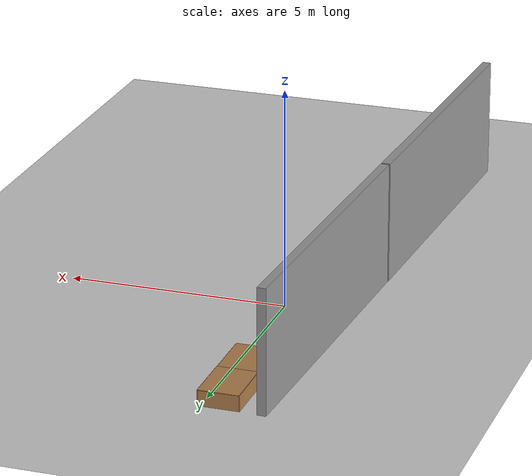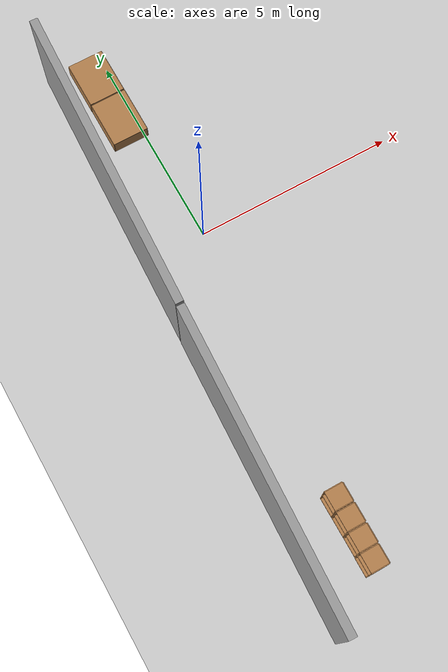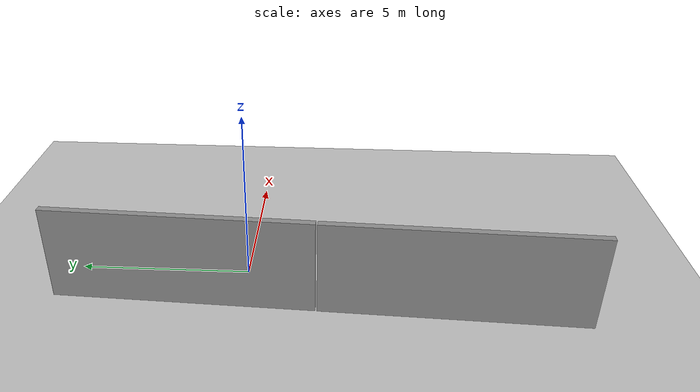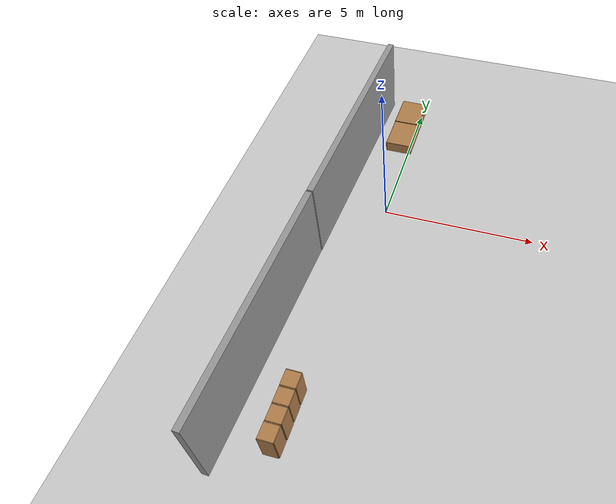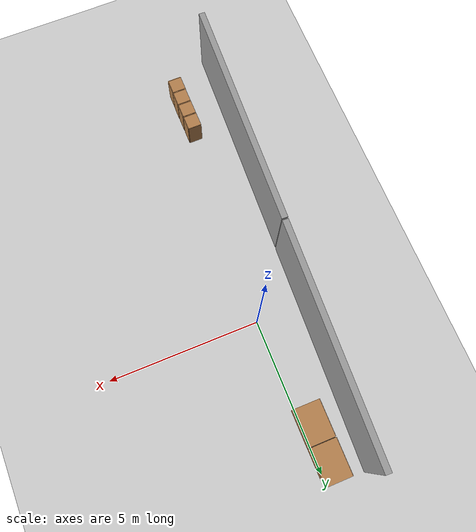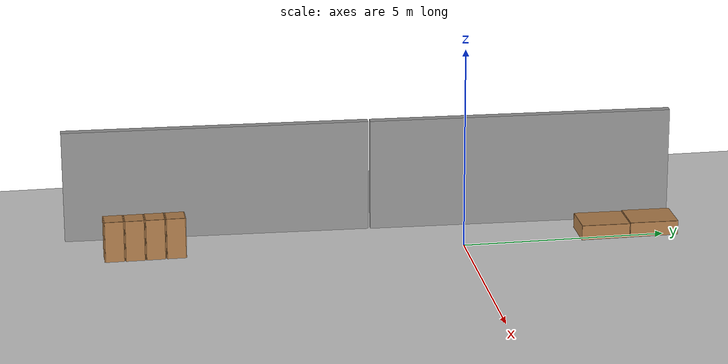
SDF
<sdf version="1.7">
 <world name="default">
  <light name="sun" type="directional">
   <pose>0 0 10 0 -0 0</pose>
   <diffuse>0.8 0.8 0.8 1</diffuse>
   <specular>0.2 0.2 0.2 1</specular>
   <attenuation>
    <range>1000</range>
    <constant>0.9</constant>
    <linear>0.01</linear>
    <quadratic>0.001</quadratic>
   </attenuation>
   <direction>-0.5 0.1 -0.9</direction>
   <spot><inner_angle>0</inner_angle><outer_angle>0</outer_angle><falloff>0</falloff></spot>
  </light>
  <model name="ground_plane">
   <static>1</static>
   <link name="link">
    <collision name="collision">
     <geometry><plane><normal>0 0 1</normal><size>100 100</size></plane></geometry>
     <surface>
      <contact><collide_bitmask>65535</collide_bitmask></contact>
      <friction><ode><mu>100</mu><mu2>50</mu2></ode></friction>
     </surface>
    </collision>
    <visual name="visual">
     <cast_shadows>0</cast_shadows>
     <geometry><plane><normal>0 0 1</normal><size>100 100</size></plane></geometry>
     <material>
      <script><uri>file://media/materials/scripts/gazebo.material</uri><name>Gazebo/Grey</name></script>
     </material>
    </visual>
   </link>
  </model>
  <gravity>0 0 -9.8</gravity>
  <magnetic_field>6e-06 2.3e-05 -4.2e-05</magnetic_field>
  <atmosphere type="adiabatic"/>
  <physics type="ode">
   <max_step_size>0.001</max_step_size>
   <real_time_factor>1</real_time_factor>
   <real_time_update_rate>1000</real_time_update_rate>
  </physics>
  <scene><ambient>0.4 0.4 0.4 1</ambient><background>0.7 0.7 0.7 1</background><shadows>1</shadows></scene>
  <spherical_coordinates>
   <surface_model>EARTH_WGS84</surface_model>
   <latitude_deg>0</latitude_deg>
   <longitude_deg>0</longitude_deg>
   <elevation>0</elevation>
   <heading_deg>0</heading_deg>
  </spherical_coordinates>
  <model name="grey_wall">
   <static>1</static>
   <link name="link">
    <pose>0 0 1.4 0 -0 0</pose>
    <collision name="collision"><geometry><box><size>7.5 0.2 2.8</size></box></geometry></collision>
    <visual name="visual">
     <cast_shadows>0</cast_shadows>
     <geometry><box><size>7.5 0.2 2.8</size></box></geometry>
     <material>
      <script>
       <uri>model://grey_wall/materials/scripts</uri>
       <uri>model://grey_wall/materials/textures</uri>
       <name>vrc/grey_wall</name>
      </script>
     </material>
    </visual>
   </link>
   <pose>-1.48028 1.68269 0 0 -0 1.52988</pose>
  </model>
  <model name="grey_wall_clone">
   <static>1</static>
   <link name="link">
    <pose>0 0 1.4 0 -0 0</pose>
    <collision name="collision"><geometry><box><size>7.5 0.2 2.8</size></box></geometry></collision>
    <visual name="visual">
     <cast_shadows>0</cast_shadows>
     <geometry><box><size>7.5 0.2 2.8</size></box></geometry>
     <material>
      <script>
       <uri>model://grey_wall/materials/scripts</uri>
       <uri>model://grey_wall/materials/textures</uri>
       <name>vrc/grey_wall</name>
      </script>
     </material>
    </visual>
   </link>
   <pose>-1.79609 -5.86051 0 0 -0 1.52988</pose>
  </model>
  <model name="cabinet">
   <static>1</static>
   <link name="cabinet_bottom_plate">
    <inertial>
     <pose>0 0 -1 0 -0 0</pose>
     <inertia><ixx>2.05</ixx><ixy>0</ixy><ixz>0</ixz><iyy>2.05</iyy><iyz>0</iyz><izz>2.05</izz></inertia>
     <mass>25</mass>
    </inertial>
    <collision name="cabinet_bottom_plate_geom">
     <pose>0 0 0.01 0 -0 0</pose>
     <geometry><box><size>0.45 0.45 0.02</size></box></geometry>
    </collision>
    <visual name="cabinet_bottom_plate_geom_visual">
     <pose>0 0 0.01 0 -0 0</pose>
     <geometry><box><size>0.45 0.45 0.02</size></box></geometry>
     <material>
      <script><uri>file://media/materials/scripts/gazebo.material</uri><name>Gazebo/Wood</name></script>
     </material>
    </visual>
    <collision name="cabinet_bottom_plate_geom_cabinet_back_plate">
     <pose>0.235 0 0.51 0 -0 0</pose>
     <geometry><box><size>0.02 0.45 1.02</size></box></geometry>
    </collision>
    <visual name="cabinet_bottom_plate_geom_cabinet_back_plate_visual">
     <pose>0.235 0 0.51 0 -0 0</pose>
     <geometry><box><size>0.02 0.45 1.02</size></box></geometry>
     <material>
      <script><uri>file://media/materials/scripts/gazebo.material</uri><name>Gazebo/Wood</name></script>
     </material>
    </visual>
    <collision name="cabinet_bottom_plate_geom_cabinet_left_plate">
     <pose>0 0.235 0.51 0 -0 0</pose>
     <geometry><box><size>0.45 0.02 1.02</size></box></geometry>
    </collision>
    <visual name="cabinet_bottom_plate_geom_cabinet_left_plate_visual">
     <pose>0 0.235 0.51 0 -0 0</pose>
     <geometry><box><size>0.45 0.02 1.02</size></box></geometry>
     <material>
      <script><uri>file://media/materials/scripts/gazebo.material</uri><name>Gazebo/Wood</name></script>
     </material>
    </visual>
    <collision name="cabinet_bottom_plate_geom_cabinet_middle_plate">
     <pose>0 0 0.51 0 -0 0</pose>
     <geometry><box><size>0.45 0.45 0.02</size></box></geometry>
    </collision>
    <visual name="cabinet_bottom_plate_geom_cabinet_middle_plate_visual">
     <pose>0 0 0.51 0 -0 0</pose>
     <geometry><box><size>0.45 0.45 0.02</size></box></geometry>
     <material>
      <script><uri>file://media/materials/scripts/gazebo.material</uri><name>Gazebo/Wood</name></script>
     </material>
    </visual>
    <collision name="cabinet_bottom_plate_geom_cabinet_right_plate">
     <pose>0 -0.235 0.51 0 -0 0</pose>
     <geometry><box><size>0.45 0.02 1.02</size></box></geometry>
    </collision>
    <visual name="cabinet_bottom_plate_geom_cabinet_right_plate_visual">
     <pose>0 -0.235 0.51 0 -0 0</pose>
     <geometry><box><size>0.45 0.02 1.02</size></box></geometry>
     <material>
      <script><uri>file://media/materials/scripts/gazebo.material</uri><name>Gazebo/Wood</name></script>
     </material>
    </visual>
    <collision name="cabinet_bottom_plate_geom_cabinet_top_plate">
     <pose>0 0 1.01 0 -0 0</pose>
     <geometry><box><size>0.45 0.45 0.02</size></box></geometry>
    </collision>
    <visual name="cabinet_bottom_plate_geom_cabinet_top_plate_visual">
     <pose>0 0 1.01 0 -0 0</pose>
     <geometry><box><size>0.45 0.45 0.02</size></box></geometry>
     <material>
      <script><uri>file://media/materials/scripts/gazebo.material</uri><name>Gazebo/Wood</name></script>
     </material>
    </visual>
   </link>
   <pose>-0.528523 -8.49269 0 0 -0 0</pose>
  </model>
  <model name="cabinet_clone">
   <static>1</static>
   <link name="cabinet_bottom_plate">
    <inertial>
     <pose>0 0 -1 0 -0 0</pose>
     <inertia><ixx>2.05</ixx><ixy>0</ixy><ixz>0</ixz><iyy>2.05</iyy><iyz>0</iyz><izz>2.05</izz></inertia>
     <mass>25</mass>
    </inertial>
    <collision name="cabinet_bottom_plate_geom">
     <pose>0 0 0.01 0 -0 0</pose>
     <geometry><box><size>0.45 0.45 0.02</size></box></geometry>
    </collision>
    <visual name="cabinet_bottom_plate_geom_visual">
     <pose>0 0 0.01 0 -0 0</pose>
     <geometry><box><size>0.45 0.45 0.02</size></box></geometry>
     <material>
      <script><uri>file://media/materials/scripts/gazebo.material</uri><name>Gazebo/Wood</name></script>
     </material>
    </visual>
    <collision name="cabinet_bottom_plate_geom_cabinet_back_plate">
     <pose>0.235 0 0.51 0 -0 0</pose>
     <geometry><box><size>0.02 0.45 1.02</size></box></geometry>
    </collision>
    <visual name="cabinet_bottom_plate_geom_cabinet_back_plate_visual">
     <pose>0.235 0 0.51 0 -0 0</pose>
     <geometry><box><size>0.02 0.45 1.02</size></box></geometry>
     <material>
      <script><uri>file://media/materials/scripts/gazebo.material</uri><name>Gazebo/Wood</name></script>
     </material>
    </visual>
    <collision name="cabinet_bottom_plate_geom_cabinet_left_plate">
     <pose>0 0.235 0.51 0 -0 0</pose>
     <geometry><box><size>0.45 0.02 1.02</size></box></geometry>
    </collision>
    <visual name="cabinet_bottom_plate_geom_cabinet_left_plate_visual">
     <pose>0 0.235 0.51 0 -0 0</pose>
     <geometry><box><size>0.45 0.02 1.02</size></box></geometry>
     <material>
      <script><uri>file://media/materials/scripts/gazebo.material</uri><name>Gazebo/Wood</name></script>
     </material>
    </visual>
    <collision name="cabinet_bottom_plate_geom_cabinet_middle_plate">
     <pose>0 0 0.51 0 -0 0</pose>
     <geometry><box><size>0.45 0.45 0.02</size></box></geometry>
    </collision>
    <visual name="cabinet_bottom_plate_geom_cabinet_middle_plate_visual">
     <pose>0 0 0.51 0 -0 0</pose>
     <geometry><box><size>0.45 0.45 0.02</size></box></geometry>
     <material>
      <script><uri>file://media/materials/scripts/gazebo.material</uri><name>Gazebo/Wood</name></script>
     </material>
    </visual>
    <collision name="cabinet_bottom_plate_geom_cabinet_right_plate">
     <pose>0 -0.235 0.51 0 -0 0</pose>
     <geometry><box><size>0.45 0.02 1.02</size></box></geometry>
    </collision>
    <visual name="cabinet_bottom_plate_geom_cabinet_right_plate_visual">
     <pose>0 -0.235 0.51 0 -0 0</pose>
     <geometry><box><size>0.45 0.02 1.02</size></box></geometry>
     <material>
      <script><uri>file://media/materials/scripts/gazebo.material</uri><name>Gazebo/Wood</name></script>
     </material>
    </visual>
    <collision name="cabinet_bottom_plate_geom_cabinet_top_plate">
     <pose>0 0 1.01 0 -0 0</pose>
     <geometry><box><size>0.45 0.45 0.02</size></box></geometry>
    </collision>
    <visual name="cabinet_bottom_plate_geom_cabinet_top_plate_visual">
     <pose>0 0 1.01 0 -0 0</pose>
     <geometry><box><size>0.45 0.45 0.02</size></box></geometry>
     <material>
      <script><uri>file://media/materials/scripts/gazebo.material</uri><name>Gazebo/Wood</name></script>
     </material>
    </visual>
   </link>
   <pose>-0.521257 -7.99812 0 0 -0 0</pose>
  </model>
  <model name="cabinet_clone_0">
   <static>1</static>
   <link name="cabinet_bottom_plate">
    <inertial>
     <pose>0 0 -1 0 -0 0</pose>
     <inertia><ixx>2.05</ixx><ixy>0</ixy><ixz>0</ixz><iyy>2.05</iyy><iyz>0</iyz><izz>2.05</izz></inertia>
     <mass>25</mass>
    </inertial>
    <collision name="cabinet_bottom_plate_geom">
     <pose>0 0 0.01 0 -0 0</pose>
     <geometry><box><size>0.45 0.45 0.02</size></box></geometry>
    </collision>
    <visual name="cabinet_bottom_plate_geom_visual">
     <pose>0 0 0.01 0 -0 0</pose>
     <geometry><box><size>0.45 0.45 0.02</size></box></geometry>
     <material>
      <script><uri>file://media/materials/scripts/gazebo.material</uri><name>Gazebo/Wood</name></script>
     </material>
    </visual>
    <collision name="cabinet_bottom_plate_geom_cabinet_back_plate">
     <pose>0.235 0 0.51 0 -0 0</pose>
     <geometry><box><size>0.02 0.45 1.02</size></box></geometry>
    </collision>
    <visual name="cabinet_bottom_plate_geom_cabinet_back_plate_visual">
     <pose>0.235 0 0.51 0 -0 0</pose>
     <geometry><box><size>0.02 0.45 1.02</size></box></geometry>
     <material>
      <script><uri>file://media/materials/scripts/gazebo.material</uri><name>Gazebo/Wood</name></script>
     </material>
    </visual>
    <collision name="cabinet_bottom_plate_geom_cabinet_left_plate">
     <pose>0 0.235 0.51 0 -0 0</pose>
     <geometry><box><size>0.45 0.02 1.02</size></box></geometry>
    </collision>
    <visual name="cabinet_bottom_plate_geom_cabinet_left_plate_visual">
     <pose>0 0.235 0.51 0 -0 0</pose>
     <geometry><box><size>0.45 0.02 1.02</size></box></geometry>
     <material>
      <script><uri>file://media/materials/scripts/gazebo.material</uri><name>Gazebo/Wood</name></script>
     </material>
    </visual>
    <collision name="cabinet_bottom_plate_geom_cabinet_middle_plate">
     <pose>0 0 0.51 0 -0 0</pose>
     <geometry><box><size>0.45 0.45 0.02</size></box></geometry>
    </collision>
    <visual name="cabinet_bottom_plate_geom_cabinet_middle_plate_visual">
     <pose>0 0 0.51 0 -0 0</pose>
     <geometry><box><size>0.45 0.45 0.02</size></box></geometry>
     <material>
      <script><uri>file://media/materials/scripts/gazebo.material</uri><name>Gazebo/Wood</name></script>
     </material>
    </visual>
    <collision name="cabinet_bottom_plate_geom_cabinet_right_plate">
     <pose>0 -0.235 0.51 0 -0 0</pose>
     <geometry><box><size>0.45 0.02 1.02</size></box></geometry>
    </collision>
    <visual name="cabinet_bottom_plate_geom_cabinet_right_plate_visual">
     <pose>0 -0.235 0.51 0 -0 0</pose>
     <geometry><box><size>0.45 0.02 1.02</size></box></geometry>
     <material>
      <script><uri>file://media/materials/scripts/gazebo.material</uri><name>Gazebo/Wood</name></script>
     </material>
    </visual>
    <collision name="cabinet_bottom_plate_geom_cabinet_top_plate">
     <pose>0 0 1.01 0 -0 0</pose>
     <geometry><box><size>0.45 0.45 0.02</size></box></geometry>
    </collision>
    <visual name="cabinet_bottom_plate_geom_cabinet_top_plate_visual">
     <pose>0 0 1.01 0 -0 0</pose>
     <geometry><box><size>0.45 0.45 0.02</size></box></geometry>
     <material>
      <script><uri>file://media/materials/scripts/gazebo.material</uri><name>Gazebo/Wood</name></script>
     </material>
    </visual>
   </link>
   <pose>-0.523245 -7.50219 0 0 -0 0</pose>
  </model>
  <model name="cabinet_clone_1">
   <static>1</static>
   <link name="cabinet_bottom_plate">
    <inertial>
     <pose>0 0 -1 0 -0 0</pose>
     <inertia><ixx>2.05</ixx><ixy>0</ixy><ixz>0</ixz><iyy>2.05</iyy><iyz>0</iyz><izz>2.05</izz></inertia>
     <mass>25</mass>
    </inertial>
    <collision name="cabinet_bottom_plate_geom">
     <pose>0 0 0.01 0 -0 0</pose>
     <geometry><box><size>0.45 0.45 0.02</size></box></geometry>
    </collision>
    <visual name="cabinet_bottom_plate_geom_visual">
     <pose>0 0 0.01 0 -0 0</pose>
     <geometry><box><size>0.45 0.45 0.02</size></box></geometry>
     <material>
      <script><uri>file://media/materials/scripts/gazebo.material</uri><name>Gazebo/Wood</name></script>
     </material>
    </visual>
    <collision name="cabinet_bottom_plate_geom_cabinet_back_plate">
     <pose>0.235 0 0.51 0 -0 0</pose>
     <geometry><box><size>0.02 0.45 1.02</size></box></geometry>
    </collision>
    <visual name="cabinet_bottom_plate_geom_cabinet_back_plate_visual">
     <pose>0.235 0 0.51 0 -0 0</pose>
     <geometry><box><size>0.02 0.45 1.02</size></box></geometry>
     <material>
      <script><uri>file://media/materials/scripts/gazebo.material</uri><name>Gazebo/Wood</name></script>
     </material>
    </visual>
    <collision name="cabinet_bottom_plate_geom_cabinet_left_plate">
     <pose>0 0.235 0.51 0 -0 0</pose>
     <geometry><box><size>0.45 0.02 1.02</size></box></geometry>
    </collision>
    <visual name="cabinet_bottom_plate_geom_cabinet_left_plate_visual">
     <pose>0 0.235 0.51 0 -0 0</pose>
     <geometry><box><size>0.45 0.02 1.02</size></box></geometry>
     <material>
      <script><uri>file://media/materials/scripts/gazebo.material</uri><name>Gazebo/Wood</name></script>
     </material>
    </visual>
    <collision name="cabinet_bottom_plate_geom_cabinet_middle_plate">
     <pose>0 0 0.51 0 -0 0</pose>
     <geometry><box><size>0.45 0.45 0.02</size></box></geometry>
    </collision>
    <visual name="cabinet_bottom_plate_geom_cabinet_middle_plate_visual">
     <pose>0 0 0.51 0 -0 0</pose>
     <geometry><box><size>0.45 0.45 0.02</size></box></geometry>
     <material>
      <script><uri>file://media/materials/scripts/gazebo.material</uri><name>Gazebo/Wood</name></script>
     </material>
    </visual>
    <collision name="cabinet_bottom_plate_geom_cabinet_right_plate">
     <pose>0 -0.235 0.51 0 -0 0</pose>
     <geometry><box><size>0.45 0.02 1.02</size></box></geometry>
    </collision>
    <visual name="cabinet_bottom_plate_geom_cabinet_right_plate_visual">
     <pose>0 -0.235 0.51 0 -0 0</pose>
     <geometry><box><size>0.45 0.02 1.02</size></box></geometry>
     <material>
      <script><uri>file://media/materials/scripts/gazebo.material</uri><name>Gazebo/Wood</name></script>
     </material>
    </visual>
    <collision name="cabinet_bottom_plate_geom_cabinet_top_plate">
     <pose>0 0 1.01 0 -0 0</pose>
     <geometry><box><size>0.45 0.45 0.02</size></box></geometry>
    </collision>
    <visual name="cabinet_bottom_plate_geom_cabinet_top_plate_visual">
     <pose>0 0 1.01 0 -0 0</pose>
     <geometry><box><size>0.45 0.45 0.02</size></box></geometry>
     <material>
      <script><uri>file://media/materials/scripts/gazebo.material</uri><name>Gazebo/Wood</name></script>
     </material>
    </visual>
   </link>
   <pose>-0.525239 -7.00426 0 0 -0 0</pose>
  </model>
  <model name="bookshelf">
   <static>1</static>
   <link name="link">
    <inertial><mass>1</mass></inertial>
    <collision name="back">
     <pose>0 0.005 0.6 0 -0 0</pose>
     <geometry><box><size>0.9 0.01 1.2</size></box></geometry>
    </collision>
    <visual name="visual1">
     <pose>0 0.005 0.6 0 -0 0</pose>
     <geometry><box><size>0.9 0.01 1.2</size></box></geometry>
     <material>
      <script><uri>file://media/materials/scripts/gazebo.material</uri><name>Gazebo/Wood</name></script>
     </material>
    </visual>
    <collision name="left_side">
     <pose>0.45 -0.195 0.6 0 -0 0</pose>
     <geometry><box><size>0.02 0.4 1.2</size></box></geometry>
    </collision>
    <visual name="visual2">
     <pose>0.45 -0.195 0.6 0 -0 0</pose>
     <geometry><box><size>0.02 0.4 1.2</size></box></geometry>
     <material>
      <script><uri>file://media/materials/scripts/gazebo.material</uri><name>Gazebo/Wood</name></script>
     </material>
    </visual>
    <collision name="right_side">
     <pose>-0.45 -0.195 0.6 0 -0 0</pose>
     <geometry><box><size>0.02 0.4 1.2</size></box></geometry>
    </collision>
    <visual name="visual3">
     <pose>-0.45 -0.195 0.6 0 -0 0</pose>
     <geometry><box><size>0.02 0.4 1.2</size></box></geometry>
     <material>
      <script><uri>file://media/materials/scripts/gazebo.material</uri><name>Gazebo/Wood</name></script>
     </material>
    </visual>
    <collision name="bottom">
     <pose>0 -0.195 0.03 0 -0 0</pose>
     <geometry><box><size>0.88 0.4 0.06</size></box></geometry>
    </collision>
    <visual name="visual4">
     <pose>0 -0.195 0.03 0 -0 0</pose>
     <geometry><box><size>0.88 0.4 0.06</size></box></geometry>
     <material>
      <script><uri>file://media/materials/scripts/gazebo.material</uri><name>Gazebo/Wood</name></script>
     </material>
    </visual>
    <collision name="top">
     <pose>0 -0.195 1.19 0 -0 0</pose>
     <geometry><box><size>0.88 0.4 0.02</size></box></geometry>
    </collision>
    <visual name="visual5">
     <pose>0 -0.195 1.19 0 -0 0</pose>
     <geometry><box><size>0.88 0.4 0.02</size></box></geometry>
     <material>
      <script><uri>file://media/materials/scripts/gazebo.material</uri><name>Gazebo/Wood</name></script>
     </material>
    </visual>
    <collision name="low_shelf">
     <pose>0 -0.195 0.43 0 -0 0</pose>
     <geometry><box><size>0.88 0.4 0.02</size></box></geometry>
    </collision>
    <visual name="visual6">
     <pose>0 -0.195 0.43 0 -0 0</pose>
     <geometry><box><size>0.88 0.4 0.02</size></box></geometry>
     <material>
      <script><uri>file://media/materials/scripts/gazebo.material</uri><name>Gazebo/Wood</name></script>
     </material>
    </visual>
    <collision name="high_shelf">
     <pose>0 -0.195 0.8 0 -0 0</pose>
     <geometry><box><size>0.88 0.4 0.02</size></box></geometry>
    </collision>
    <visual name="visual7">
     <pose>0 -0.195 0.8 0 -0 0</pose>
     <geometry><box><size>0.88 0.4 0.02</size></box></geometry>
     <material>
      <script><uri>file://media/materials/scripts/gazebo.material</uri><name>Gazebo/Wood</name></script>
     </material>
    </visual>
   </link>
   <pose>-0.376443 5.37132 0.334392 1.55803 -0 0</pose>
  </model>
  <model name="bookshelf_clone">
   <static>1</static>
   <link name="link">
    <inertial><mass>1</mass></inertial>
    <collision name="back">
     <pose>0 0.005 0.6 0 -0 0</pose>
     <geometry><box><size>0.9 0.01 1.2</size></box></geometry>
    </collision>
    <visual name="visual1">
     <pose>0 0.005 0.6 0 -0 0</pose>
     <geometry><box><size>0.9 0.01 1.2</size></box></geometry>
     <material>
      <script><uri>file://media/materials/scripts/gazebo.material</uri><name>Gazebo/Wood</name></script>
     </material>
    </visual>
    <collision name="left_side">
     <pose>0.45 -0.195 0.6 0 -0 0</pose>
     <geometry><box><size>0.02 0.4 1.2</size></box></geometry>
    </collision>
    <visual name="visual2">
     <pose>0.45 -0.195 0.6 0 -0 0</pose>
     <geometry><box><size>0.02 0.4 1.2</size></box></geometry>
     <material>
      <script><uri>file://media/materials/scripts/gazebo.material</uri><name>Gazebo/Wood</name></script>
     </material>
    </visual>
    <collision name="right_side">
     <pose>-0.45 -0.195 0.6 0 -0 0</pose>
     <geometry><box><size>0.02 0.4 1.2</size></box></geometry>
    </collision>
    <visual name="visual3">
     <pose>-0.45 -0.195 0.6 0 -0 0</pose>
     <geometry><box><size>0.02 0.4 1.2</size></box></geometry>
     <material>
      <script><uri>file://media/materials/scripts/gazebo.material</uri><name>Gazebo/Wood</name></script>
     </material>
    </visual>
    <collision name="bottom">
     <pose>0 -0.195 0.03 0 -0 0</pose>
     <geometry><box><size>0.88 0.4 0.06</size></box></geometry>
    </collision>
    <visual name="visual4">
     <pose>0 -0.195 0.03 0 -0 0</pose>
     <geometry><box><size>0.88 0.4 0.06</size></box></geometry>
     <material>
      <script><uri>file://media/materials/scripts/gazebo.material</uri><name>Gazebo/Wood</name></script>
     </material>
    </visual>
    <collision name="top">
     <pose>0 -0.195 1.19 0 -0 0</pose>
     <geometry><box><size>0.88 0.4 0.02</size></box></geometry>
    </collision>
    <visual name="visual5">
     <pose>0 -0.195 1.19 0 -0 0</pose>
     <geometry><box><size>0.88 0.4 0.02</size></box></geometry>
     <material>
      <script><uri>file://media/materials/scripts/gazebo.material</uri><name>Gazebo/Wood</name></script>
     </material>
    </visual>
    <collision name="low_shelf">
     <pose>0 -0.195 0.43 0 -0 0</pose>
     <geometry><box><size>0.88 0.4 0.02</size></box></geometry>
    </collision>
    <visual name="visual6">
     <pose>0 -0.195 0.43 0 -0 0</pose>
     <geometry><box><size>0.88 0.4 0.02</size></box></geometry>
     <material>
      <script><uri>file://media/materials/scripts/gazebo.material</uri><name>Gazebo/Wood</name></script>
     </material>
    </visual>
    <collision name="high_shelf">
     <pose>0 -0.195 0.8 0 -0 0</pose>
     <geometry><box><size>0.88 0.4 0.02</size></box></geometry>
    </collision>
    <visual name="visual7">
     <pose>0 -0.195 0.8 0 -0 0</pose>
     <geometry><box><size>0.88 0.4 0.02</size></box></geometry>
     <material>
      <script><uri>file://media/materials/scripts/gazebo.material</uri><name>Gazebo/Wood</name></script>
     </material>
    </visual>
   </link>
   <pose>-0.371374 4.14762 0.334392 1.55803 -0 0</pose>
  </model>
 </world>
</sdf>
